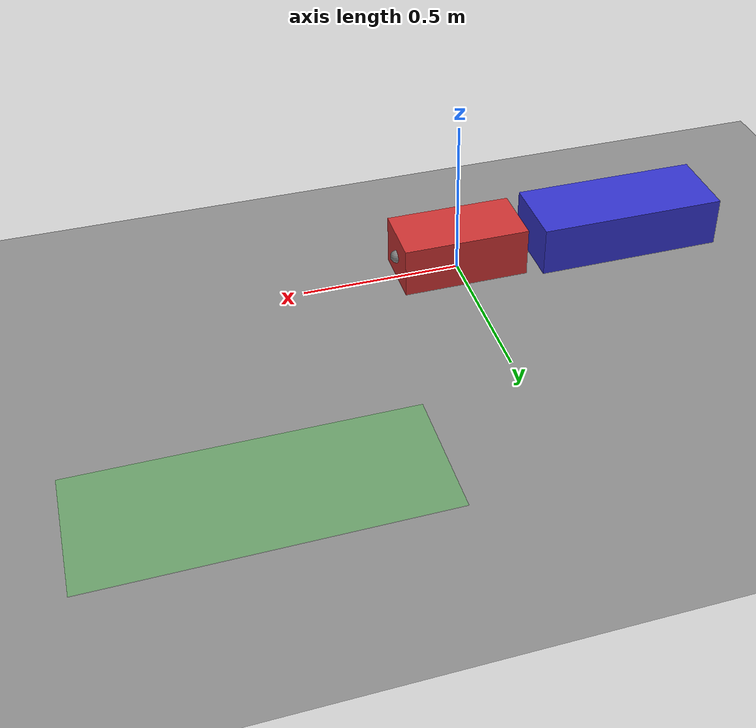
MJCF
<mujoco model="trailer">
  <compiler angle="radian"/>
  <option timestep="0.01"/>

  <default>
    <geom friction="1.0 0.005 0.0001"/>
  </default>

  <worldbody>
    <geom name="floor" type="plane" size="5 5 0.1" pos="0 0 0" rgba="0.55 0.55 0.55 1"/>

    <!-- Visual-only marker for the parking spot. contype/conaffinity 0 means
         it never collides with anything -- it's just paint on the floor. -->
    <geom name="parking_spot" type="box" size="0.5 0.2 0.001" pos="0.8 0.8 0.001"
          rgba="0.2 0.8 0.2 0.35" contype="0" conaffinity="0"/>

    <!-- Link 1: tractor. Free to translate in x/y and rotate in yaw. -->
    <body name="tractor" pos="0 0 0.08">
      <joint name="tractor_x" type="slide" axis="1 0 0" damping="5"/>
      <joint name="tractor_y" type="slide" axis="0 1 0" damping="5"/>
      <joint name="tractor_yaw" type="hinge" axis="0 0 1" damping="2"/>

      <geom name="tractor_body" type="box" size="0.2 0.1 0.08" mass="5" rgba="0.8 0.2 0.2 1"/>

      <site name="tractor_front" pos="0.2 0 0" size="0.02"/>
      <site name="hitch_point" pos="-0.2 0 0" size="0.02"/>

      <!-- Link 2: trailer, attached behind the tractor via the hitch hinge. -->
      <body name="trailer" pos="-0.55 0 0">
        <joint name="hitch" type="hinge" axis="0 0 1" pos="0.35 0 0"
               range="-2.0944 2.0944" limited="true" damping="1"/>

        <geom name="trailer_body" type="box" size="0.3 0.12 0.08" mass="3" rgba="0.2 0.2 0.8 1"/>

        <site name="trailer_center" pos="0 0 0" size="0.02"/>
        <site name="trailer_rear" pos="-0.3 0 0" size="0.02"/>
      </body>
    </body>
  </worldbody>

  <actuator>
    <velocity name="tractor_x_act" joint="tractor_x" kv="50" ctrllimited="true" ctrlrange="-1 1"/>
    <velocity name="tractor_y_act" joint="tractor_y" kv="50" ctrllimited="true" ctrlrange="-1 1"/>
    <velocity name="tractor_yaw_act" joint="tractor_yaw" kv="20" ctrllimited="true" ctrlrange="-1.57 1.57"/>
  </actuator>
</mujoco>
